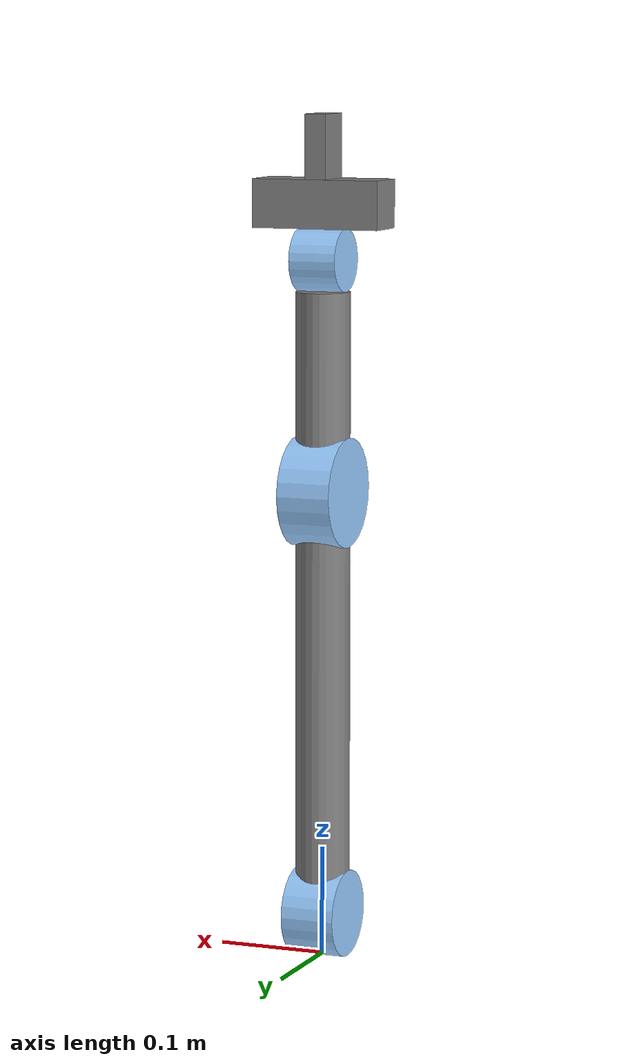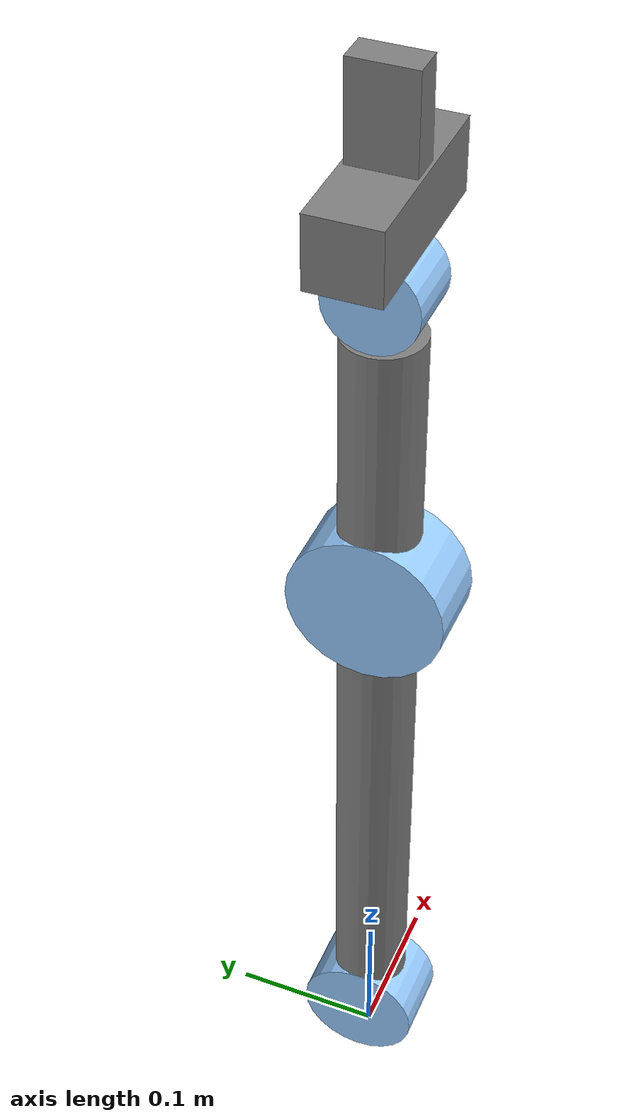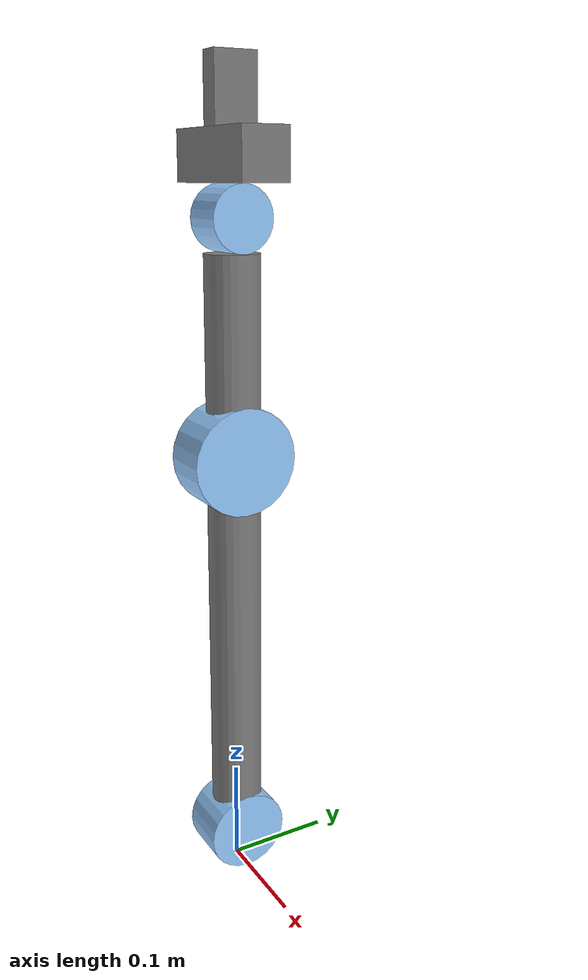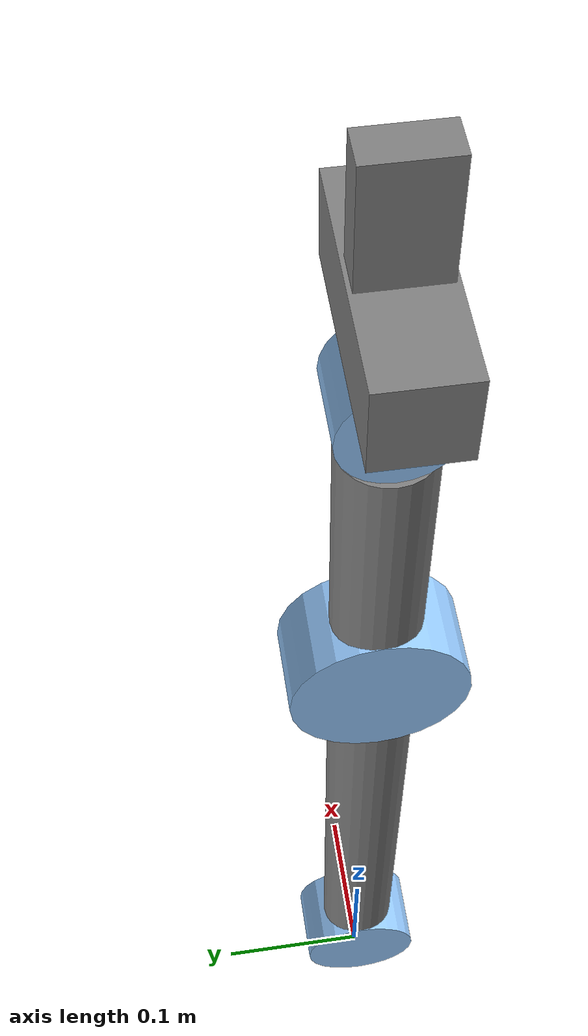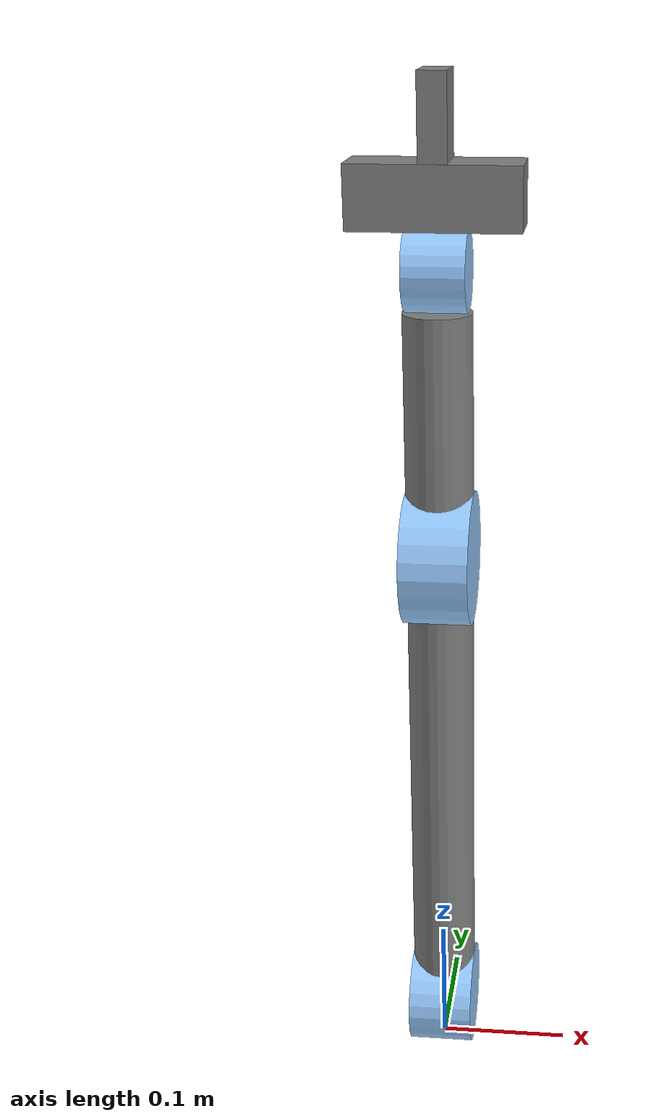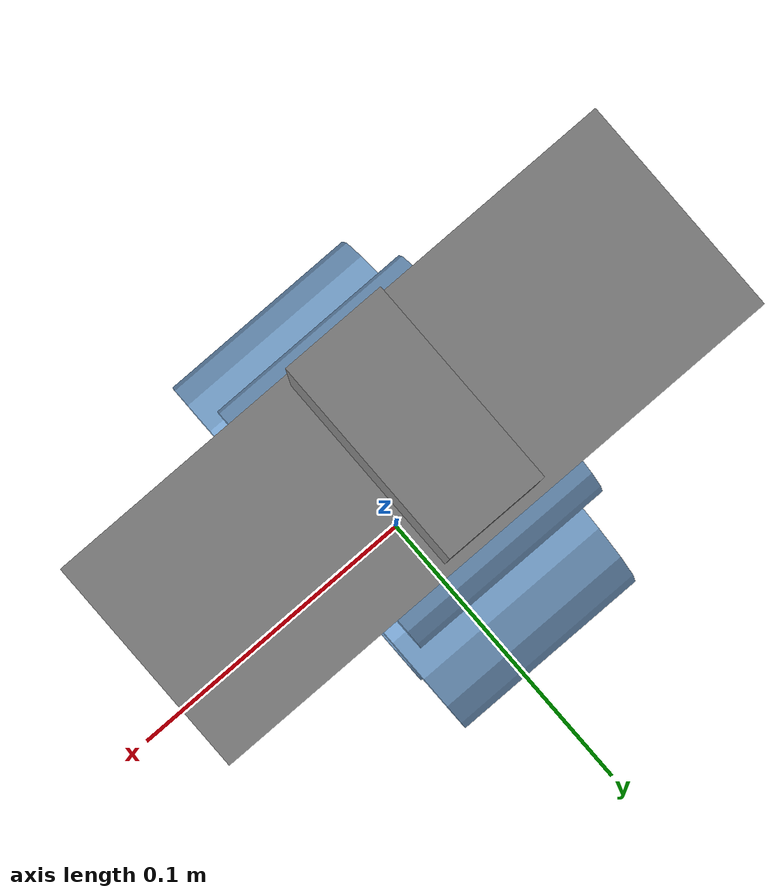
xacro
<?xml version="1.0"?>
<robot name="rav_arm" xmlns:xacro="http://www.ros.org/wiki/xacro">

  <xacro:include filename="$(find rav_description)/urdf/arm.urdf.xacro"/>

  <!-- Link raiz fixo — nome diferente de "world" para evitar conflito com o virtual_joint do SRDF -->
  <link name="arm_world"/>

  <xacro:arm
    parent_link="arm_world"
    prefix="arm_"
    xyz="0 0 0"
    rpy="0 0 0"/>

</robot>

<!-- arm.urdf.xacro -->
<robot xmlns:xacro="http://www.ros.org/wiki/xacro" name="arm">

  <xacro:arg name="use_sim" default="false"/>

  <xacro:macro name="arm" params="parent_link prefix xyz:='0 0 0' rpy:='0 0 0'">

    <xacro:property name="M_PI" value="3.14159"/>
    <xacro:property name="mass_1" value="20"/>
    <xacro:property name="mass_2" value="5"/>
    <xacro:property name="mass_3" value="3"/>
    <xacro:property name="mass_4" value="3"/>
    <xacro:property name="mass_5" value="1"/>
    <xacro:property name="mass_6" value="0.2"/>

    <xacro:property name="radius_1" value="0.1"/>
    <xacro:property name="radius_2" value="0.05"/>
    <xacro:property name="radius_3" value="0.025"/>
    <xacro:property name="radius_4" value="0.025"/>
    <xacro:property name="radius_5" value="0.022"/>
    <xacro:property name="radius_6" value="0.02"/>

    <xacro:property name="length_1" value="0.15"/>
    <xacro:property name="length_2" value="0.4"/>
    <xacro:property name="length_3" value="0.4"/>
    <xacro:property name="length_4" value="0.2"/>
    <xacro:property name="length_5" value="0.12"/>
    <xacro:property name="length_6" value="0.07"/>

    <!-- Original -->

    <material name="Black"><color rgba="0.0 0.0 0.0 1.0"/></material>
    <material name="Red"><color rgba="0.8 0.0 0.0 1.0"/></material>
    <material name="Blue"><color rgba="0.0 0.0 1.0 1.0"/></material>
    <material name="LightBlue"><color rgba="0.589 0.793 1.0 1.0"/></material>
    <material name="Grey"><color rgba="0.5 0.5 0.5 1.0"/></material>
    <material name="White"><color rgba="1.0 1.0 1.0 1.0"/></material>

    <xacro:macro name="inertial_block" params="mass length radius">
      <inertial>
        <origin xyz="0 0 ${length/2}" rpy="0 0 0"/>
        <mass value="${mass}"/>
        <inertia
          ixx="${mass / 12.0 * (2*radius*2*radius + length*length)}" ixy="0.0" ixz="0.0"
          iyy="${mass / 12.0 * (length*length + 2*radius*2*radius)}" iyz="0.0"
          izz="${mass / 12.0 * (2*radius*2*radius + 2*radius*2*radius)}"/>
      </inertial>
    </xacro:macro>

    <xacro:macro name="gazebo_grey_link_color_block" params="link_name">
      <gazebo reference="${link_name}">
        <visual>
          <material>
            <ambient>0.5 0.5 0.5 1.0</ambient>
            <diffuse>0.56666695 0.56666695 0.56666695 1.0</diffuse>
            <specular>0.6000003 0.6000003 0.6000003 1.0</specular>
          </material>
        </visual>
      </gazebo>
    </xacro:macro>

    <xacro:macro name="gazebo_blue_link_color_block" params="link_name">
      <gazebo reference="${link_name}">
        <visual>
          <material>
            <ambient>0.589 0.793 1.0 1.0</ambient>
            <diffuse>0.56666695 0.56666695 0.56666695 1.0</diffuse>
            <specular>0.6000003 0.6000003 0.6000003 1.0</specular>
          </material>
        </visual>
      </gazebo>
    </xacro:macro>

    <!-- Junta de montagem do braço no RAV -->
    <joint name="${prefix}mount_joint" type="fixed">
      <origin xyz="${xyz}" rpy="${rpy}"/>
      <parent link="${parent_link}"/>
      <child link="${prefix}base_link"/>
    </joint>

    <link name="${prefix}base_link">
      <xacro:inertial_block mass="${mass_3/4.0}" length="${radius_3*2.0}" radius="${radius_3*1.6}"/>

      <visual>
      <origin xyz="0 0 ${radius_3*1.6}" rpy="0 ${M_PI/2.0} 0"/>
      <geometry>
        <cylinder radius="${radius_3*1.6}" length="${radius_3*2.0}"/>
      </geometry>
      <material name="LightBlue"/>
    </visual>

    <collision>
      <origin xyz="0 0 ${radius_3*1.6}" rpy="0 ${M_PI/2.0} 0"/>
      <geometry>
        <cylinder radius="${radius_3*1.6}" length="${radius_3*2.0}"/>
      </geometry>
    </collision>
    </link>

    <joint name="${prefix}joint_2" type="revolute">
      <origin xyz="0 0 ${radius_3*1.6}" rpy="0 0 0"/>
      <parent link="${prefix}base_link"/>
      <child link="${prefix}link_2"/>
      <axis xyz="-1 0 0"/>
      <limit lower="0.0" upper="${M_PI * 2}" effort="300.0" velocity="1.0"/>
    </joint>

    <link name="${prefix}link_2">
      <xacro:inertial_block mass="${mass_3}" length="${length_3}" radius="${radius_3}"/>
      <visual>
        <origin xyz="0 0 ${length_3/2.0}" rpy="0 0 0"/>
        <geometry><cylinder radius="${radius_3}" length="${length_3}"/></geometry>
        <material name="Grey"/>
      </visual>
      <collision>
        <origin xyz="0 0 ${length_3/2.0}" rpy="0 0 0"/>
        <geometry><cylinder radius="${radius_3}" length="${length_3}"/></geometry>
      </collision>
    </link>
    <xacro:gazebo_grey_link_color_block link_name="${prefix}link_2"/>

    <link name="${prefix}link_2_endlink">
      <xacro:inertial_block mass="${mass_3/4.0}" length="${radius_3*2.0}" radius="${radius_3}"/>

      <visual>
        <origin xyz="0 0 ${radius_3}" rpy="0 0 0"/>
        <geometry>
          <cylinder radius="${radius_3*2}" length="${radius_3*2.0}"/>
        </geometry>
        <material name="LightBlue"/>
      </visual>

      <collision>
        <origin xyz="0 0 ${radius_3}" rpy="0 0 0"/>
        <geometry>
          <cylinder radius="${radius_3*2}" length="${radius_3*2.0}"/>
        </geometry>
      </collision>
    </link>

    <joint name="${prefix}link_2_endjoint" type="fixed">
      <origin xyz="${-radius_3} 0 ${length_3 - 0.01}" rpy="0 ${M_PI/2.0} 0"/>
      <parent link="${prefix}link_2"/>
      <child link="${prefix}link_2_endlink"/>
    </joint>

    <gazebo reference="${prefix}link_2_endjoint">
      <disableFixedJointLumping>true</disableFixedJointLumping>
      <preserveFixedJoint>true</preserveFixedJoint>
    </gazebo>

    <joint name="${prefix}joint_3" type="revolute">
      <origin xyz="0 0 ${length_3}" rpy="0 0 0"/>
      <parent link="${prefix}link_2"/>
      <child link="${prefix}link_3"/>
      <axis xyz="1 0 0"/>
      <limit lower="0.0" upper="${M_PI * 2}" effort="300.0" velocity="1.0"/>
    </joint>

    <link name="${prefix}link_3">
      <xacro:inertial_block mass="${mass_4}" length="${length_4}" radius="${radius_4}"/>
          <visual>
      <origin xyz="0 0 ${(length_4 - radius_5*1.3)/2.0}" rpy="0 0 0"/>
      <geometry>
        <cylinder radius="${radius_4}" length="${length_4 - radius_5*1.3}"/>
      </geometry>
      <material name="Grey"/>
    </visual>

    <collision>
      <origin xyz="0 0 ${(length_4 - radius_5*1.3)/2.0}" rpy="0 0 0"/>
      <geometry>
        <cylinder radius="${radius_4}" length="${length_4 - radius_5*1.3}"/>
      </geometry>
    </collision>
    </link>
    <xacro:gazebo_grey_link_color_block link_name="${prefix}link_3"/>

    <joint name="${prefix}joint_4" type="revolute">
      <origin xyz="0 0 ${length_4}" rpy="0 0 0"/>
      <parent link="${prefix}link_3"/>
      <child link="${prefix}link_4"/>
      <axis xyz="1 0 0"/>
      <limit lower="-${M_PI}" upper="${M_PI}" effort="300.0" velocity="1.0"/>
    </joint>

    <link name="${prefix}link_4">
      <xacro:inertial_block mass="${mass_5}" length="${length_5}" radius="${radius_5}"/>

      <!-- Cilindro da junta 4 -->
      <visual>
        <origin xyz="0 0 0" rpy="0 ${M_PI/2.0} 0"/>
        <geometry>
          <cylinder radius="${radius_5*1.3}" length="${radius_5*2.0}"/>
        </geometry>
        <material name="LightBlue"/>
      </visual>

      <collision>
        <origin xyz="0 0 0" rpy="0 ${M_PI/2.0} 0"/>
        <geometry>
          <cylinder radius="${radius_5*1.3}" length="${radius_5*2.0}"/>
        </geometry>
      </collision>

      <!-- Retângulo apoiado no limite superior do cilindro -->
      <visual>
        <origin xyz="0 0 ${radius_5*2.3}" rpy="0 ${M_PI/2.0} 0"/>
        <geometry>
          <box size="${radius_5*2} ${radius_5*2} ${length_5}"/>
        </geometry>
        <material name="Grey"/>
      </visual>

      <collision>
        <origin xyz="0 0 ${radius_5*2.3}" rpy="0 ${M_PI/2.0} 0"/>
        <geometry>
          <box size="${radius_5*2} ${radius_5*2} ${length_5}"/>
        </geometry>
      </collision>
    </link>

    <joint name="${prefix}gripper_joint_1" type="prismatic">
      <origin xyz="0 0 ${radius_5*2.3 + length_6/2.0}" rpy="0 0 0"/>
      <parent link="${prefix}link_4"/>
      <child link="${prefix}gripper_link_1"/>
      <axis xyz="1 0 0"/>
      <limit lower="0.0" upper="0.03" effort="100.0" velocity="1.0"/>
    </joint>

    <joint name="${prefix}gripper_joint_2" type="prismatic">
      <origin xyz="0 0 ${radius_5*2.3 + length_6/2.0}" rpy="0 0 0"/>
      <parent link="${prefix}link_4"/>
      <child link="${prefix}gripper_link_2"/>
      <axis xyz="-1 0 0"/>
      <limit lower="0.0" upper="0.03" effort="100.0" velocity="1.0"/>

      <mimic joint="${prefix}gripper_joint_1" multiplier="1.0" offset="0.0"/>
    </joint>

    <joint name="${prefix}gripper_frame_joint" type="fixed">
      <origin xyz="0 0 ${radius_5*2.3 + length_6}" rpy="0 0 0"/>
      <parent link="${prefix}link_4"/>
      <child link="${prefix}gripper_frame_cp"/>
    </joint>

    <link name="${prefix}gripper_link_1">
      <xacro:inertial_block mass="${mass_6}" length="${length_6}" radius="${radius_6}"/>
      <visual>
        <origin xyz="0 0 ${radius_6/2.0}" rpy="0 0 0"/>
        <geometry><box size="${radius_6} ${radius_6*2} ${length_6}"/></geometry>
        <material name="Grey"/>
      </visual>
      <collision>
        <origin xyz="0 0 ${radius_6/2.0}" rpy="0 0 0"/>
        <geometry><box size="${radius_6*2} ${radius_6*2} ${length_6}"/></geometry>
      </collision>
    </link>
    <xacro:gazebo_grey_link_color_block link_name="${prefix}gripper_link_1"/>

    <link name="${prefix}gripper_link_2">
      <xacro:inertial_block mass="${mass_6}" length="${length_6}" radius="${radius_6}"/>
      <visual>
        <origin xyz="0 0 ${radius_6/2.0}" rpy="0 0 0"/>
        <geometry><box size="${radius_6} ${radius_6*2} ${length_6}"/></geometry>
        <material name="Grey"/>
      </visual>
      <collision>
        <origin xyz="0 0 ${radius_6/2.0}" rpy="0 0 0"/>
        <geometry><box size="${radius_6*2} ${radius_6*2} ${length_6}"/></geometry>
      </collision>
    </link>
    <xacro:gazebo_grey_link_color_block link_name="${prefix}gripper_link_2"/>

    <link name="${prefix}gripper_frame_cp">
      <xacro:inertial_block mass="${0.001}" length="${0.001}" radius="${0.001}"/>
      <visual>
        <origin xyz="0 0 0" rpy="0 0 0"/>
        <geometry><box size="${0.001} ${0.001} ${0.001}"/></geometry>
        <material name="Grey"/>
      </visual>
      <collision>
        <origin xyz="0 0 0" rpy="0 0 0"/>
        <geometry><box size="${0.001} ${0.001} ${0.001}"/></geometry>
      </collision>
    </link>

    <xacro:if value="$(arg use_sim)">
      <ros2_control name="${prefix}GazeboSystem" type="system">
        <hardware>
          <plugin>gazebo_ros2_control/GazeboSystem</plugin>
        </hardware>

        <joint name="${prefix}joint_2">
          <command_interface name="position"/>
          <state_interface name="position"/>
          <state_interface name="velocity"/>
        </joint>

        <joint name="${prefix}joint_3">
          <command_interface name="position"/>
          <state_interface name="position"/>
          <state_interface name="velocity"/>
        </joint>

        <joint name="${prefix}joint_4">
          <command_interface name="position"/>
          <state_interface name="position"/>
          <state_interface name="velocity"/>
        </joint>

        <joint name="${prefix}gripper_joint_1">
          <command_interface name="position"/>
          <state_interface name="position"/>
          <state_interface name="velocity"/>
        </joint>

        <joint name="${prefix}gripper_joint_2">
          <command_interface name="position"/>
          <state_interface name="position"/>
          <state_interface name="velocity"/>
        </joint>
      </ros2_control>

      <gazebo>
        <plugin filename="libgazebo_ros2_control.so" name="${prefix}gazebo_ros2_control">
          <parameters>$(find rav_description)/config/arm_controllers.yaml</parameters>
        </plugin>
      </gazebo>
    </xacro:if>

  </xacro:macro>

</robot>
